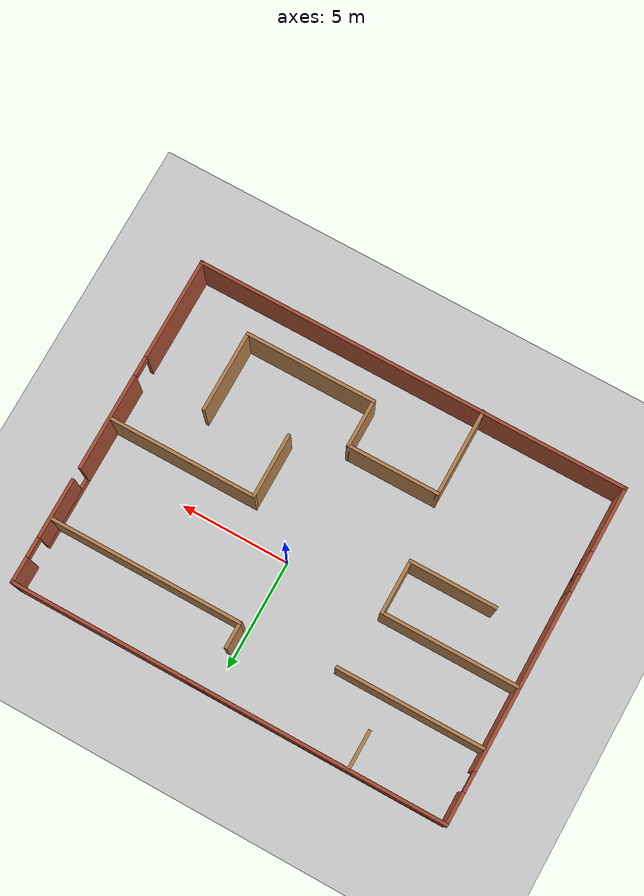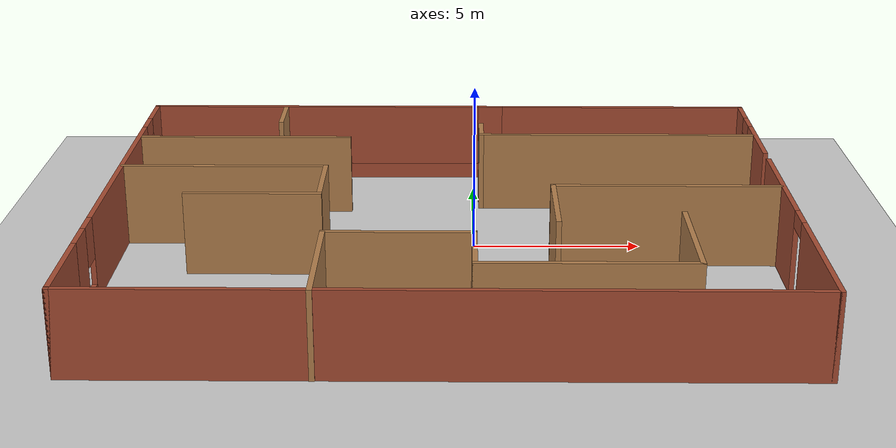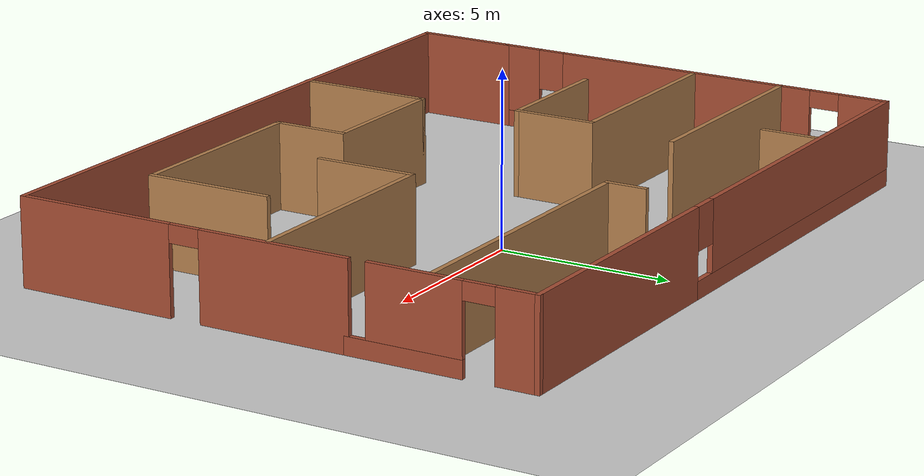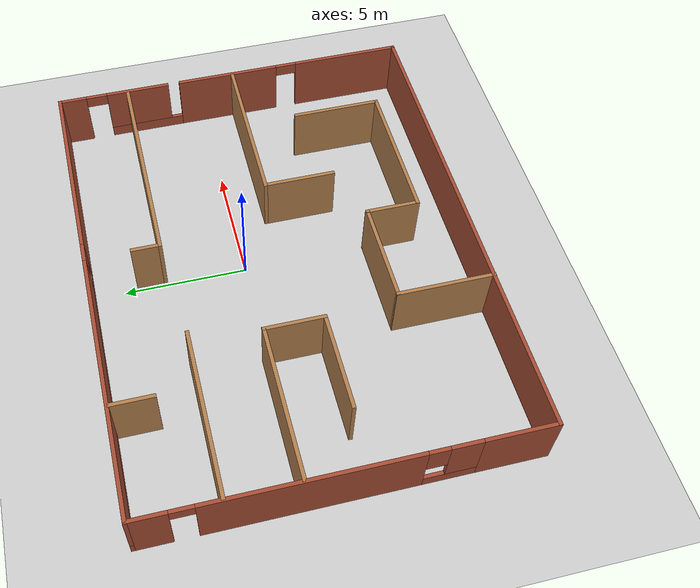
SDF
<sdf version="1.7">
 <world name="default">
  <light name="sun" type="directional">
   <pose>0 0 10 0 -0 0</pose>
   <diffuse>0.8 0.8 0.8 1</diffuse>
   <specular>0.2 0.2 0.2 1</specular>
   <attenuation>
    <range>1000</range>
    <constant>0.9</constant>
    <linear>0.01</linear>
    <quadratic>0.001</quadratic>
   </attenuation>
   <direction>-0.5 0.1 -0.9</direction>
   <spot><inner_angle>0</inner_angle><outer_angle>0</outer_angle><falloff>0</falloff></spot>
  </light>
  <model name="ground_plane">
   <static>1</static>
   <link name="link">
    <collision name="collision">
     <geometry><plane><normal>0 0 1</normal><size>100 100</size></plane></geometry>
     <surface>
      <contact><collide_bitmask>65535</collide_bitmask></contact>
      <friction><ode><mu>100</mu><mu2>50</mu2></ode></friction>
     </surface>
    </collision>
    <visual name="visual">
     <cast_shadows>0</cast_shadows>
     <geometry><plane><normal>0 0 1</normal><size>100 100</size></plane></geometry>
     <material>
      <script><uri>file://media/materials/scripts/gazebo.material</uri><name>Gazebo/Grey</name></script>
     </material>
    </visual>
   </link>
  </model>
  <gravity>0 0 -9.8</gravity>
  <magnetic_field>6e-06 2.3e-05 -4.2e-05</magnetic_field>
  <atmosphere type="adiabatic"/>
  <physics type="ode">
   <max_step_size>0.001</max_step_size>
   <real_time_factor>1</real_time_factor>
   <real_time_update_rate>1000</real_time_update_rate>
  </physics>
  <scene><ambient>0.4 0.4 0.4 1</ambient><background>0.7 0.7 0.7 1</background><shadows>1</shadows></scene>
  <spherical_coordinates>
   <surface_model>EARTH_WGS84</surface_model>
   <latitude_deg>0</latitude_deg>
   <longitude_deg>0</longitude_deg>
   <elevation>0</elevation>
   <heading_deg>0</heading_deg>
  </spherical_coordinates>
  <model name="Untitled">
   <pose>-0.828411 -1.32 0 0 -0 0</pose>
   <link name="Wall_58">
    <pose>-9.8 1.43308 0 0 -0 -1.5708</pose>
    <visual name="Wall_58_Visual_0">
     <pose>-5.49579 0 1.25 0 -0 0</pose>
     <geometry><box><size>1.50841 0.15 2.5</size></box></geometry>
     <material>
      <script><uri>file://media/materials/scripts/gazebo.material</uri><name>Gazebo/Bricks</name></script>
      <ambient>1 1 1 1</ambient>
     </material>
     <meta><layer>0</layer></meta>
    </visual>
    <collision name="Wall_58_Collision_0">
     <geometry><box><size>1.50841 0.15 2.5</size></box></geometry>
     <pose>-5.49579 0 1.25 0 -0 0</pose>
    </collision>
    <visual name="Wall_58_Visual_1">
     <pose>0.201114 0 1.25 0 -0 0</pose>
     <geometry><box><size>8.08541 0.15 2.5</size></box></geometry>
     <material>
      <script><uri>file://media/materials/scripts/gazebo.material</uri><name>Gazebo/Bricks</name></script>
      <ambient>1 1 1 1</ambient>
     </material>
     <meta><layer>0</layer></meta>
    </visual>
    <collision name="Wall_58_Collision_1">
     <geometry><box><size>8.08541 0.15 2.5</size></box></geometry>
     <pose>0.201114 0 1.25 0 -0 0</pose>
    </collision>
    <visual name="Wall_58_Visual_2">
     <pose>4.24382 0 1.25 0 -0 0</pose>
     <geometry><box><size>0 0.15 2.5</size></box></geometry>
     <material>
      <script><uri>file://media/materials/scripts/gazebo.material</uri><name>Gazebo/Bricks</name></script>
      <ambient>1 1 1 1</ambient>
     </material>
     <meta><layer>0</layer></meta>
    </visual>
    <collision name="Wall_58_Collision_2">
     <geometry><box><size>0 0.15 2.5</size></box></geometry>
     <pose>4.24382 0 1.25 0 -0 0</pose>
    </collision>
    <visual name="Wall_58_Visual_3">
     <pose>5.24691 0 0.25 0 -0 0</pose>
     <geometry><box><size>2.00618 0.15 0.5</size></box></geometry>
     <material>
      <script><uri>file://media/materials/scripts/gazebo.material</uri><name>Gazebo/Bricks</name></script>
      <ambient>1 1 1 1</ambient>
     </material>
     <meta><layer>0</layer></meta>
    </visual>
    <collision name="Wall_58_Collision_3">
     <geometry><box><size>2.00618 0.15 0.5</size></box></geometry>
     <pose>5.24691 0 0.25 0 -0 0</pose>
    </collision>
    <visual name="Wall_58_Visual_4">
     <pose>5.64691 0 1.5 0 -0 0</pose>
     <geometry><box><size>1.20618 0.15 2</size></box></geometry>
     <material>
      <script><uri>file://media/materials/scripts/gazebo.material</uri><name>Gazebo/Bricks</name></script>
      <ambient>1 1 1 1</ambient>
     </material>
     <meta><layer>0</layer></meta>
    </visual>
    <collision name="Wall_58_Collision_4">
     <geometry><box><size>1.20618 0.15 2</size></box></geometry>
     <pose>5.64691 0 1.5 0 -0 0</pose>
    </collision>
    <visual name="Wall_58_Visual_5">
     <pose>4.24382 0 1.9 0 -0 0</pose>
     <geometry><box><size>0 0.15 1.2</size></box></geometry>
     <material>
      <script><uri>file://media/materials/scripts/gazebo.material</uri><name>Gazebo/Bricks</name></script>
      <ambient>1 1 1 1</ambient>
     </material>
     <meta><layer>0</layer></meta>
    </visual>
    <collision name="Wall_58_Collision_5">
     <geometry><box><size>0 0.15 1.2</size></box></geometry>
     <pose>4.24382 0 1.9 0 -0 0</pose>
    </collision>
    <visual name="Wall_58_Visual_6">
     <pose>4.64382 0 1.9 0 -0 0</pose>
     <geometry><box><size>0.8 0.15 1.2</size></box></geometry>
     <material>
      <script><uri>file://media/materials/scripts/gazebo.material</uri><name>Gazebo/Bricks</name></script>
      <ambient>1 1 1 1</ambient>
     </material>
     <meta><layer>0</layer></meta>
    </visual>
    <collision name="Wall_58_Collision_6">
     <geometry><box><size>0.8 0.15 1.2</size></box></geometry>
     <pose>4.64382 0 1.9 0 -0 0</pose>
    </collision>
    <visual name="Wall_58_Visual_7">
     <pose>-4.29159 0 2.25 0 -0 0</pose>
     <geometry><box><size>0.9 0.15 0.5</size></box></geometry>
     <material>
      <script><uri>file://media/materials/scripts/gazebo.material</uri><name>Gazebo/Bricks</name></script>
      <ambient>1 1 1 1</ambient>
     </material>
     <meta><layer>0</layer></meta>
    </visual>
    <collision name="Wall_58_Collision_7">
     <geometry><box><size>0.9 0.15 0.5</size></box></geometry>
     <pose>-4.29159 0 2.25 0 -0 0</pose>
    </collision>
   </link>
   <link name="Wall_59">
    <collision name="Wall_59_Collision">
     <geometry><box><size>3 0.15 2.5</size></box></geometry>
     <pose>0 0 1.25 0 -0 0</pose>
    </collision>
    <visual name="Wall_59_Visual">
     <pose>0 0 1.25 0 -0 0</pose>
     <geometry><box><size>3 0.15 2.5</size></box></geometry>
     <material>
      <script><uri>file://media/materials/scripts/gazebo.material</uri><name>Gazebo/Bricks</name></script>
      <ambient>1 1 1 1</ambient>
     </material>
     <meta><layer>0</layer></meta>
    </visual>
    <pose>-9.8 -6.16692 0 0 -0 -1.5708</pose>
   </link>
   <link name="Wall_61">
    <collision name="Wall_61_Collision">
     <geometry><box><size>19.75 0.15 2.5</size></box></geometry>
     <pose>0 0 1.25 0 -0 0</pose>
    </collision>
    <visual name="Wall_61_Visual">
     <pose>0 0 1.25 0 -0 0</pose>
     <geometry><box><size>19.75 0.15 2.5</size></box></geometry>
     <material>
      <script><uri>file://media/materials/scripts/gazebo.material</uri><name>Gazebo/Bricks</name></script>
      <ambient>1 1 1 1</ambient>
     </material>
     <meta><layer>0</layer></meta>
    </visual>
    <pose>-0 -7.59192 0 0 -0 0</pose>
   </link>
   <link name="Wall_62">
    <pose>9.8 -2.66692 0 0 -0 1.5708</pose>
    <visual name="Wall_62_Visual_0">
     <pose>-2.66271 0 1.25 0 -0 0</pose>
     <geometry><box><size>4.67458 0.15 2.5</size></box></geometry>
     <material>
      <script><uri>file://media/materials/scripts/gazebo.material</uri><name>Gazebo/Bricks</name></script>
      <ambient>1 1 1 1</ambient>
     </material>
     <meta><layer>0</layer></meta>
    </visual>
    <collision name="Wall_62_Collision_0">
     <geometry><box><size>4.67458 0.15 2.5</size></box></geometry>
     <pose>-2.66271 0 1.25 0 -0 0</pose>
    </collision>
    <visual name="Wall_62_Visual_1">
     <pose>2.78729 0 1.25 0 -0 0</pose>
     <geometry><box><size>4.42542 0.15 2.5</size></box></geometry>
     <material>
      <script><uri>file://media/materials/scripts/gazebo.material</uri><name>Gazebo/Bricks</name></script>
      <ambient>1 1 1 1</ambient>
     </material>
     <meta><layer>0</layer></meta>
    </visual>
    <collision name="Wall_62_Collision_1">
     <geometry><box><size>4.42542 0.15 2.5</size></box></geometry>
     <pose>2.78729 0 1.25 0 -0 0</pose>
    </collision>
    <visual name="Wall_62_Visual_2">
     <pose>0.124579 0 2.25 0 -0 0</pose>
     <geometry><box><size>0.9 0.15 0.5</size></box></geometry>
     <material>
      <script><uri>file://media/materials/scripts/gazebo.material</uri><name>Gazebo/Bricks</name></script>
      <ambient>1 1 1 1</ambient>
     </material>
     <meta><layer>0</layer></meta>
    </visual>
    <collision name="Wall_62_Collision_2">
     <geometry><box><size>0.9 0.15 0.5</size></box></geometry>
     <pose>0.124579 0 2.25 0 -0 0</pose>
    </collision>
   </link>
   <link name="Wall_63">
    <pose>9.8 4.93308 0 0 -0 1.5708</pose>
    <visual name="Wall_63_Visual_0">
     <pose>-1.06349 0 0.25 0 -0 0</pose>
     <geometry><box><size>3.37302 0.15 0.5</size></box></geometry>
     <material>
      <script><uri>file://media/materials/scripts/gazebo.material</uri><name>Gazebo/Bricks</name></script>
      <ambient>1 1 1 1</ambient>
     </material>
     <meta><layer>0</layer></meta>
    </visual>
    <collision name="Wall_63_Collision_0">
     <geometry><box><size>3.37302 0.15 0.5</size></box></geometry>
     <pose>-1.06349 0 0.25 0 -0 0</pose>
    </collision>
    <visual name="Wall_63_Visual_1">
     <pose>2.13651 0 1.25 0 -0 0</pose>
     <geometry><box><size>1.22698 0.15 2.5</size></box></geometry>
     <material>
      <script><uri>file://media/materials/scripts/gazebo.material</uri><name>Gazebo/Bricks</name></script>
      <ambient>1 1 1 1</ambient>
     </material>
     <meta><layer>0</layer></meta>
    </visual>
    <collision name="Wall_63_Collision_1">
     <geometry><box><size>1.22698 0.15 2.5</size></box></geometry>
     <pose>2.13651 0 1.25 0 -0 0</pose>
    </collision>
    <visual name="Wall_63_Visual_2">
     <pose>-0.746099 0 1.5 0 -0 0</pose>
     <geometry><box><size>2.73823 0.15 2</size></box></geometry>
     <material>
      <script><uri>file://media/materials/scripts/gazebo.material</uri><name>Gazebo/Bricks</name></script>
      <ambient>1 1 1 1</ambient>
     </material>
     <meta><layer>0</layer></meta>
    </visual>
    <collision name="Wall_63_Collision_2">
     <geometry><box><size>2.73823 0.15 2</size></box></geometry>
     <pose>-0.746099 0 1.5 0 -0 0</pose>
    </collision>
    <visual name="Wall_63_Visual_3">
     <pose>1.07302 0 2.25 0 -0 0</pose>
     <geometry><box><size>0.9 0.15 0.5</size></box></geometry>
     <material>
      <script><uri>file://media/materials/scripts/gazebo.material</uri><name>Gazebo/Bricks</name></script>
      <ambient>1 1 1 1</ambient>
     </material>
     <meta><layer>0</layer></meta>
    </visual>
    <collision name="Wall_63_Collision_3">
     <geometry><box><size>0.9 0.15 0.5</size></box></geometry>
     <pose>1.07302 0 2.25 0 -0 0</pose>
    </collision>
   </link>
   <link name="Wall_64">
    <pose>-0 7.60808 0 0 -0 3.14159</pose>
    <visual name="Wall_64_Visual_0">
     <pose>-5.84134 0 1.25 0 -0 0</pose>
     <geometry><box><size>8.06733 0.15 2.5</size></box></geometry>
     <material>
      <script><uri>file://media/materials/scripts/gazebo.material</uri><name>Gazebo/Bricks</name></script>
      <ambient>1 1 1 1</ambient>
     </material>
     <meta><layer>0</layer></meta>
    </visual>
    <collision name="Wall_64_Collision_0">
     <geometry><box><size>8.06733 0.15 2.5</size></box></geometry>
     <pose>-5.84134 0 1.25 0 -0 0</pose>
    </collision>
    <visual name="Wall_64_Visual_1">
     <pose>4.03366 0 0.25 0 -0 0</pose>
     <geometry><box><size>11.6827 0.15 0.5</size></box></geometry>
     <material>
      <script><uri>file://media/materials/scripts/gazebo.material</uri><name>Gazebo/Bricks</name></script>
      <ambient>1 1 1 1</ambient>
     </material>
     <meta><layer>0</layer></meta>
    </visual>
    <collision name="Wall_64_Collision_1">
     <geometry><box><size>11.6827 0.15 0.5</size></box></geometry>
     <pose>4.03366 0 0.25 0 -0 0</pose>
    </collision>
    <visual name="Wall_64_Visual_2">
     <pose>4.43366 0 1.5 0 -0 0</pose>
     <geometry><box><size>10.8827 0.15 2</size></box></geometry>
     <material>
      <script><uri>file://media/materials/scripts/gazebo.material</uri><name>Gazebo/Bricks</name></script>
      <ambient>1 1 1 1</ambient>
     </material>
     <meta><layer>0</layer></meta>
    </visual>
    <collision name="Wall_64_Collision_2">
     <geometry><box><size>10.8827 0.15 2</size></box></geometry>
     <pose>4.43366 0 1.5 0 -0 0</pose>
    </collision>
    <visual name="Wall_64_Visual_3">
     <pose>-1.40768 0 1.9 0 -0 0</pose>
     <geometry><box><size>0.8 0.15 1.2</size></box></geometry>
     <material>
      <script><uri>file://media/materials/scripts/gazebo.material</uri><name>Gazebo/Bricks</name></script>
      <ambient>1 1 1 1</ambient>
     </material>
     <meta><layer>0</layer></meta>
    </visual>
    <collision name="Wall_64_Collision_3">
     <geometry><box><size>0.8 0.15 1.2</size></box></geometry>
     <pose>-1.40768 0 1.9 0 -0 0</pose>
    </collision>
   </link>
   <link name="Wall_66">
    <collision name="Wall_66_Collision">
     <geometry><box><size>6.75 0.15 2.5</size></box></geometry>
     <pose>0 0 1.25 0 -0 0</pose>
    </collision>
    <visual name="Wall_66_Visual">
     <pose>0 0 1.25 0 -0 0</pose>
     <geometry><box><size>6.75 0.15 2.5</size></box></geometry>
     <material>
      <script><uri>file://media/materials/scripts/gazebo.material</uri><name>Gazebo/Wood</name></script>
      <ambient>1 1 1 1</ambient>
     </material>
     <meta><layer>0</layer></meta>
    </visual>
    <pose>-6.44399 4.31752 0 0 -0 0</pose>
   </link>
   <link name="Wall_68">
    <collision name="Wall_68_Collision">
     <geometry><box><size>8.75 0.15 2.5</size></box></geometry>
     <pose>0 0 1.25 0 -0 0</pose>
    </collision>
    <visual name="Wall_68_Visual">
     <pose>0 0 1.25 0 -0 0</pose>
     <geometry><box><size>8.75 0.15 2.5</size></box></geometry>
     <material>
      <script><uri>file://media/materials/scripts/gazebo.material</uri><name>Gazebo/Wood</name></script>
      <ambient>1 1 1 1</ambient>
     </material>
     <meta><layer>0</layer></meta>
    </visual>
    <pose>5.37468 4.63413 0 0 -0 3.14159</pose>
   </link>
   <link name="Wall_69">
    <collision name="Wall_69_Collision">
     <geometry><box><size>1.25 0.15 2.5</size></box></geometry>
     <pose>0 0 1.25 0 -0 0</pose>
    </collision>
    <visual name="Wall_69_Visual">
     <pose>0 0 1.25 0 -0 0</pose>
     <geometry><box><size>1.25 0.15 2.5</size></box></geometry>
     <material>
      <script><uri>file://media/materials/scripts/gazebo.material</uri><name>Gazebo/Wood</name></script>
      <ambient>1 1 1 1</ambient>
     </material>
     <meta><layer>0</layer></meta>
    </visual>
    <pose>1.07468 5.18413 0 0 -0 1.5708</pose>
   </link>
   <link name="Wall_71">
    <collision name="Wall_71_Collision">
     <geometry><box><size>6.25 0.15 2.5</size></box></geometry>
     <pose>0 0 1.25 0 -0 0</pose>
    </collision>
    <visual name="Wall_71_Visual">
     <pose>0 0 1.25 0 -0 0</pose>
     <geometry><box><size>6.25 0.15 2.5</size></box></geometry>
     <material>
      <script><uri>file://media/materials/scripts/gazebo.material</uri><name>Gazebo/Wood</name></script>
      <ambient>1 1 1 1</ambient>
     </material>
     <meta><layer>0</layer></meta>
    </visual>
    <pose>-6.69399 1.5384 0 0 -0 0</pose>
   </link>
   <link name="Wall_72">
    <collision name="Wall_72_Collision">
     <geometry><box><size>2.5 0.15 2.5</size></box></geometry>
     <pose>0 0 1.25 0 -0 0</pose>
    </collision>
    <visual name="Wall_72_Visual">
     <pose>0 0 1.25 0 -0 0</pose>
     <geometry><box><size>2.5 0.15 2.5</size></box></geometry>
     <material>
      <script><uri>file://media/materials/scripts/gazebo.material</uri><name>Gazebo/Wood</name></script>
      <ambient>1 1 1 1</ambient>
     </material>
     <meta><layer>0</layer></meta>
    </visual>
    <pose>-3.64399 0.363396 0 0 -0 -1.5708</pose>
   </link>
   <link name="Wall_73">
    <collision name="Wall_73_Collision">
     <geometry><box><size>4 0.15 2.5</size></box></geometry>
     <pose>0 0 1.25 0 -0 0</pose>
    </collision>
    <visual name="Wall_73_Visual">
     <pose>0 0 1.25 0 -0 0</pose>
     <geometry><box><size>4 0.15 2.5</size></box></geometry>
     <material>
      <script><uri>file://media/materials/scripts/gazebo.material</uri><name>Gazebo/Wood</name></script>
      <ambient>1 1 1 1</ambient>
     </material>
     <meta><layer>0</layer></meta>
    </visual>
    <pose>-5.56899 -0.811604 0 0 -0 3.14159</pose>
   </link>
   <link name="Wall_75">
    <collision name="Wall_75_Collision">
     <geometry><box><size>6.75 0.15 2.5</size></box></geometry>
     <pose>0 0 1.25 0 -0 0</pose>
    </collision>
    <visual name="Wall_75_Visual">
     <pose>0 0 1.25 0 -0 0</pose>
     <geometry><box><size>6.75 0.15 2.5</size></box></geometry>
     <material>
      <script><uri>file://media/materials/scripts/gazebo.material</uri><name>Gazebo/Wood</name></script>
      <ambient>1 1 1 1</ambient>
     </material>
     <meta><layer>0</layer></meta>
    </visual>
    <pose>6.40986 -0.079827 0 0 -0 3.14159</pose>
   </link>
   <link name="Wall_76">
    <collision name="Wall_76_Collision">
     <geometry><box><size>3 0.15 2.5</size></box></geometry>
     <pose>0 0 1.25 0 -0 0</pose>
    </collision>
    <visual name="Wall_76_Visual">
     <pose>0 0 1.25 0 -0 0</pose>
     <geometry><box><size>3 0.15 2.5</size></box></geometry>
     <material>
      <script><uri>file://media/materials/scripts/gazebo.material</uri><name>Gazebo/Wood</name></script>
      <ambient>1 1 1 1</ambient>
     </material>
     <meta><layer>0</layer></meta>
    </visual>
    <pose>3.10986 -1.50483 0 0 -0 -1.5708</pose>
   </link>
   <link name="Wall_78">
    <collision name="Wall_78_Collision">
     <geometry><box><size>4 0.15 2.5</size></box></geometry>
     <pose>0 0 1.25 0 -0 0</pose>
    </collision>
    <visual name="Wall_78_Visual">
     <pose>0 0 1.25 0 -0 0</pose>
     <geometry><box><size>4 0.15 2.5</size></box></geometry>
     <material>
      <script><uri>file://media/materials/scripts/gazebo.material</uri><name>Gazebo/Wood</name></script>
      <ambient>1 1 1 1</ambient>
     </material>
     <meta><layer>0</layer></meta>
    </visual>
    <pose>-3.30628 -5.68308 0 0 -0 1.5708</pose>
   </link>
   <link name="Wall_79">
    <collision name="Wall_79_Collision">
     <geometry><box><size>4.25 0.15 2.5</size></box></geometry>
     <pose>0 0 1.25 0 -0 0</pose>
    </collision>
    <visual name="Wall_79_Visual">
     <pose>0 0 1.25 0 -0 0</pose>
     <geometry><box><size>4.25 0.15 2.5</size></box></geometry>
     <material>
      <script><uri>file://media/materials/scripts/gazebo.material</uri><name>Gazebo/Wood</name></script>
      <ambient>1 1 1 1</ambient>
     </material>
     <meta><layer>0</layer></meta>
    </visual>
    <pose>-1.25628 -3.75808 0 0 -0 0</pose>
   </link>
   <link name="Wall_80">
    <collision name="Wall_80_Collision">
     <geometry><box><size>2.25 0.15 2.5</size></box></geometry>
     <pose>0 0 1.25 0 -0 0</pose>
    </collision>
    <visual name="Wall_80_Visual">
     <pose>0 0 1.25 0 -0 0</pose>
     <geometry><box><size>2.25 0.15 2.5</size></box></geometry>
     <material>
      <script><uri>file://media/materials/scripts/gazebo.material</uri><name>Gazebo/Wood</name></script>
      <ambient>1 1 1 1</ambient>
     </material>
     <meta><layer>0</layer></meta>
    </visual>
    <pose>0.793721 -4.80808 0 0 -0 -1.5708</pose>
   </link>
   <link name="Wall_81">
    <collision name="Wall_81_Collision">
     <geometry><box><size>6 0.15 2.5</size></box></geometry>
     <pose>0 0 1.25 0 -0 0</pose>
    </collision>
    <visual name="Wall_81_Visual">
     <pose>0 0 1.25 0 -0 0</pose>
     <geometry><box><size>6 0.15 2.5</size></box></geometry>
     <material>
      <script><uri>file://media/materials/scripts/gazebo.material</uri><name>Gazebo/Wood</name></script>
      <ambient>1 1 1 1</ambient>
     </material>
     <meta><layer>0</layer></meta>
    </visual>
    <pose>3.71872 -5.85808 0 0 -0 0</pose>
   </link>
   <link name="Wall_82">
    <collision name="Wall_82_Collision">
     <geometry><box><size>3.75 0.15 2.5</size></box></geometry>
     <pose>0 0 1.25 0 -0 0</pose>
    </collision>
    <visual name="Wall_82_Visual">
     <pose>0 0 1.25 0 -0 0</pose>
     <geometry><box><size>3.75 0.15 2.5</size></box></geometry>
     <material>
      <script><uri>file://media/materials/scripts/gazebo.material</uri><name>Gazebo/Wood</name></script>
      <ambient>1 1 1 1</ambient>
     </material>
     <meta><layer>0</layer></meta>
    </visual>
    <pose>6.64372 -4.05808 0 0 -0 1.5708</pose>
   </link>
   <link name="Wall_84">
    <collision name="Wall_84_Collision">
     <geometry><box><size>1.75 0.15 2.5</size></box></geometry>
     <pose>0 0 1.25 0 -0 0</pose>
    </collision>
    <visual name="Wall_84_Visual">
     <pose>0 0 1.25 0 -0 0</pose>
     <geometry><box><size>1.75 0.15 2.5</size></box></geometry>
     <material>
      <script><uri>file://media/materials/scripts/gazebo.material</uri><name>Gazebo/Wood</name></script>
      <ambient>1 1 1 1</ambient>
     </material>
     <meta><layer>0</layer></meta>
    </visual>
    <pose>-5.45218 6.71879 0 0 -0 -1.5708</pose>
   </link>
   <static>1</static>
  </model>
 </world>
</sdf>
